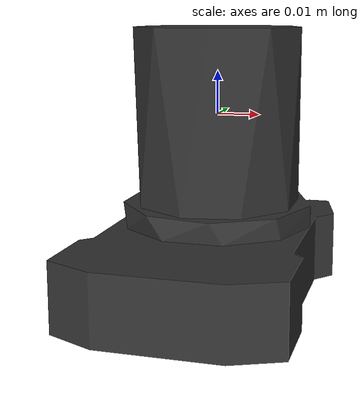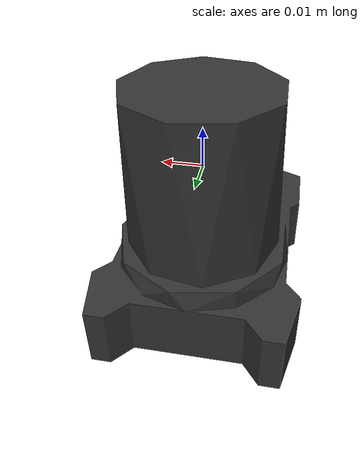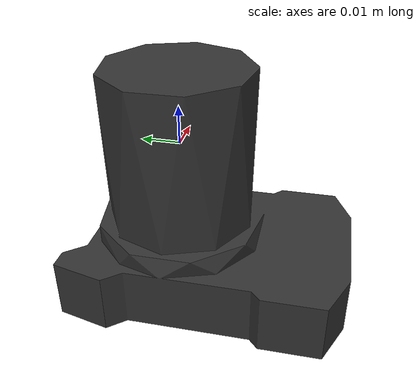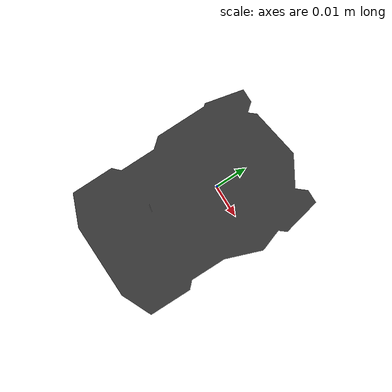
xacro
<?xml version="1.0"?>

<!-- inspired by https://articulatedrobotics.xyz/mobile-robot-8-lidar/ -->

<robot xmlns:xacro="http://www.ros.org/wiki/xacro" name="lidar">

    <material name="black">
        <color rgba="0.2 0.2 0.2 1.0"/>
    </material>

    <link name="laser_frame">
        <visual>
            <geometry>
                <mesh filename="package://ros_lidar/3D_parts/stl/simple_lidar_shape.stl" scale="0.001 0.001 0.001"/>
            </geometry>
            <origin xyz="0 -0.00915 -0.042" rpy="3.14159 0 0"/>
            <material name="black"/>
        </visual>
        <collision>
            <geometry>
                <mesh filename="package://ros_lidar/3D_parts/stl/simple_lidar_shape.stl" scale="0.001 0.001 0.001"/>
            </geometry>
            <origin xyz="0 -0.00915 -0.042" rpy="3.14159 0 0"/>
        </collision>
        <inertial>
            <mass value="0.075"/>
            <inertia ixx="0.0000137" ixy="0.0" ixz="0.0" iyy="0.0000137" iyz="0.0" izz="0.00002419"/> <!-- cylinder r=2.54cm h=3cm -->
        </inertial>
        <origin xyz="0 -0.00915 -0.042" rpy="3.14159 0 0"/>
    </link>

    <gazebo reference="laser_frame">
        <material>Gazebo/DarkGrey</material>

        <sensor name="laser" type="ray">
            <pose> 0 0 0 0 0 0 </pose>
            <visualize>true</visualize>
            <update_rate>3</update_rate>
            <ray>
                <scan>
                    <horizontal>
                        <samples>360</samples>
                        <min_angle>-3.14</min_angle>
                        <max_angle>3.14</max_angle>
                    </horizontal>
                </scan>
                <range>
                    <min>0.10</min>
                    <max>12.0</max>
                    <resolution>0.01</resolution>
                </range>
                <noise>
                    <type>gaussian</type>
                    <mean>0.0</mean>
                    <stddev>0.01</stddev>
                </noise>
            </ray>
            <plugin name="laser" filename="libgazebo_ros_laser.so">
                <topicName>/lidar_laserscan</topicName>
                <frameName>laser_frame</frameName>
            </plugin>
        </sensor>
    </gazebo>

</robot>
